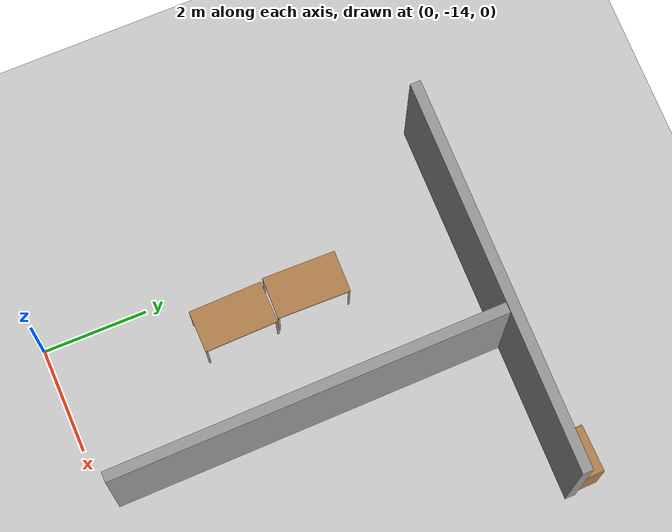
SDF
<sdf version="1.6">
 <world name="default">
  <light name="sun" type="directional">
   <pose>0 0 15 0 -0 0</pose>
   <diffuse>1 1 1 1</diffuse>
   <specular>0.1 0.1 0.1 1</specular>
   <attenuation>
    <range>1000</range>
    <constant>0.9</constant>
    <linear>0.01</linear>
    <quadratic>0.001</quadratic>
   </attenuation>
   <direction>-0.5 0.5 -1</direction>
  </light>
  <model name="ground_plane">
   <static>1</static>
   <link name="link">
    <collision name="collision">
     <geometry><plane><normal>0 0 1</normal><size>100 100</size></plane></geometry>
     <surface><friction><ode><mu>100</mu><mu2>50</mu2></ode></friction></surface>
    </collision>
    <visual name="visual">
     <transparency>1</transparency>
     <cast_shadows>0</cast_shadows>
     <geometry><plane><normal>0 0 1</normal><size>100 100</size></plane></geometry>
     <material>
      <script><uri>file://media/materials/scripts/gazebo.material</uri><name>Gazebo/Grey</name></script>
     </material>
    </visual>
   </link>
  </model>
  <gravity>0 0 -9.8</gravity>
  <magnetic_field>6e-06 2.3e-05 -4.2e-05</magnetic_field>
  <atmosphere type="adiabatic"/>
  <physics name="default_physics" default="0" type="ode">
   <max_step_size>0.001</max_step_size>
   <real_time_factor>1</real_time_factor>
   <real_time_update_rate>1000</real_time_update_rate>
  </physics>
  <scene><ambient>0.4 0.4 0.4 1</ambient><background>0.7 0.7 0.7 1</background><shadows>1</shadows></scene>
  <spherical_coordinates>
   <surface_model>EARTH_WGS84</surface_model>
   <latitude_deg>0</latitude_deg>
   <longitude_deg>0</longitude_deg>
   <elevation>0</elevation>
   <heading_deg>0</heading_deg>
  </spherical_coordinates>
  <model name="grey_wall">
   <static>1</static>
   <link name="link">
    <pose>0 0 1.4 0 -0 0</pose>
    <collision name="collision"><geometry><box><size>7.5 0.2 2.8</size></box></geometry></collision>
    <visual name="visual">
     <cast_shadows>0</cast_shadows>
     <geometry><box><size>7.5 0.2 2.8</size></box></geometry>
     <material>
      <script>
       <uri>model://grey_wall/materials/scripts</uri>
       <uri>model://grey_wall/materials/textures</uri>
       <name>vrc/grey_wall</name>
      </script>
     </material>
    </visual>
   </link>
   <pose>2.37771 -6.14515 0 0 -0 0</pose>
  </model>
  <model name="grey_wall_clone">
   <static>1</static>
   <link name="link">
    <pose>0 0 1.4 0 -0 0</pose>
    <collision name="collision"><geometry><box><size>7.5 0.2 2.8</size></box></geometry></collision>
    <visual name="visual">
     <cast_shadows>0</cast_shadows>
     <geometry><box><size>7.5 0.2 2.8</size></box></geometry>
     <material>
      <script>
       <uri>model://grey_wall/materials/scripts</uri>
       <uri>model://grey_wall/materials/textures</uri>
       <name>vrc/grey_wall</name>
      </script>
     </material>
    </visual>
   </link>
   <pose>3.0468 -10.0021 0 0 0 -1.55622</pose>
  </model>
  <model name="table">
   <static>0</static>
   <link name="link">
    <collision name="surface">
     <pose>0 0 1 0 -0 0</pose>
     <geometry><box><size>1.5 0.8 0.03</size></box></geometry>
     <surface><friction><ode><mu>0.6</mu><mu2>0.6</mu2></ode></friction></surface>
    </collision>
    <visual name="visual1">
     <pose>0 0 1 0 -0 0</pose>
     <geometry><box><size>1.4 0.8 0.04</size></box></geometry>
     <material>
      <script><uri>file://media/materials/scripts/gazebo.material</uri><name>Gazebo/Wood</name></script>
     </material>
    </visual>
    <collision name="front_left_leg">
     <pose>0.68 0.38 0.5 0 -0 0</pose>
     <geometry><cylinder><radius>0.02</radius><length>1</length></cylinder></geometry>
    </collision>
    <visual name="front_left_leg">
     <pose>0.68 0.38 0.5 0 -0 0</pose>
     <geometry><cylinder><radius>0.02</radius><length>1</length></cylinder></geometry>
     <material>
      <script><uri>file://media/materials/scripts/gazebo.material</uri><name>Gazebo/Grey</name></script>
     </material>
    </visual>
    <collision name="front_right_leg">
     <pose>0.68 -0.38 0.5 0 -0 0</pose>
     <geometry><cylinder><radius>0.02</radius><length>1</length></cylinder></geometry>
    </collision>
    <visual name="front_right_leg">
     <pose>0.68 -0.38 0.5 0 -0 0</pose>
     <geometry><cylinder><radius>0.02</radius><length>1</length></cylinder></geometry>
     <material>
      <script><uri>file://media/materials/scripts/gazebo.material</uri><name>Gazebo/Grey</name></script>
     </material>
    </visual>
    <collision name="back_right_leg">
     <pose>-0.68 -0.38 0.5 0 -0 0</pose>
     <geometry><cylinder><radius>0.02</radius><length>1</length></cylinder></geometry>
    </collision>
    <visual name="back_right_leg">
     <pose>-0.68 -0.38 0.5 0 -0 0</pose>
     <geometry><cylinder><radius>0.02</radius><length>1</length></cylinder></geometry>
     <material>
      <script><uri>file://media/materials/scripts/gazebo.material</uri><name>Gazebo/Grey</name></script>
     </material>
    </visual>
    <collision name="back_left_leg">
     <pose>-0.68 0.38 0.5 0 -0 0</pose>
     <geometry><cylinder><radius>0.02</radius><length>1</length></cylinder></geometry>
    </collision>
    <visual name="back_left_leg">
     <pose>-0.68 0.38 0.5 0 -0 0</pose>
     <geometry><cylinder><radius>0.02</radius><length>1</length></cylinder></geometry>
     <material>
      <script><uri>file://media/materials/scripts/gazebo.material</uri><name>Gazebo/Grey</name></script>
     </material>
    </visual>
    <inertial>
     <inertia><ixx>1</ixx><ixy>0</ixy><ixz>0</ixz><iyy>1</iyy><iyz>0</iyz><izz>1</izz></inertia>
     <mass>1</mass>
    </inertial>
   </link>
   <pose>0.915547 -9.16366 0.131034 0 0 -1.58697</pose>
  </model>
  <model name="table_clone">
   <static>0</static>
   <link name="link">
    <collision name="surface">
     <pose>0 0 1 0 -0 0</pose>
     <geometry><box><size>1.5 0.8 0.03</size></box></geometry>
     <surface><friction><ode><mu>0.6</mu><mu2>0.6</mu2></ode></friction></surface>
    </collision>
    <visual name="visual1">
     <pose>0 0 1 0 -0 0</pose>
     <geometry><box><size>1.4 0.8 0.04</size></box></geometry>
     <material>
      <script><uri>file://media/materials/scripts/gazebo.material</uri><name>Gazebo/Wood</name></script>
     </material>
    </visual>
    <collision name="front_left_leg">
     <pose>0.68 0.38 0.5 0 -0 0</pose>
     <geometry><cylinder><radius>0.02</radius><length>1</length></cylinder></geometry>
    </collision>
    <visual name="front_left_leg">
     <pose>0.68 0.38 0.5 0 -0 0</pose>
     <geometry><cylinder><radius>0.02</radius><length>1</length></cylinder></geometry>
     <material>
      <script><uri>file://media/materials/scripts/gazebo.material</uri><name>Gazebo/Grey</name></script>
     </material>
    </visual>
    <collision name="front_right_leg">
     <pose>0.68 -0.38 0.5 0 -0 0</pose>
     <geometry><cylinder><radius>0.02</radius><length>1</length></cylinder></geometry>
    </collision>
    <visual name="front_right_leg">
     <pose>0.68 -0.38 0.5 0 -0 0</pose>
     <geometry><cylinder><radius>0.02</radius><length>1</length></cylinder></geometry>
     <material>
      <script><uri>file://media/materials/scripts/gazebo.material</uri><name>Gazebo/Grey</name></script>
     </material>
    </visual>
    <collision name="back_right_leg">
     <pose>-0.68 -0.38 0.5 0 -0 0</pose>
     <geometry><cylinder><radius>0.02</radius><length>1</length></cylinder></geometry>
    </collision>
    <visual name="back_right_leg">
     <pose>-0.68 -0.38 0.5 0 -0 0</pose>
     <geometry><cylinder><radius>0.02</radius><length>1</length></cylinder></geometry>
     <material>
      <script><uri>file://media/materials/scripts/gazebo.material</uri><name>Gazebo/Grey</name></script>
     </material>
    </visual>
    <collision name="back_left_leg">
     <pose>-0.68 0.38 0.5 0 -0 0</pose>
     <geometry><cylinder><radius>0.02</radius><length>1</length></cylinder></geometry>
    </collision>
    <visual name="back_left_leg">
     <pose>-0.68 0.38 0.5 0 -0 0</pose>
     <geometry><cylinder><radius>0.02</radius><length>1</length></cylinder></geometry>
     <material>
      <script><uri>file://media/materials/scripts/gazebo.material</uri><name>Gazebo/Grey</name></script>
     </material>
    </visual>
    <inertial>
     <inertia><ixx>1</ixx><ixy>0</ixy><ixz>0</ixz><iyy>1</iyy><iyz>0</iyz><izz>1</izz></inertia>
     <mass>1</mass>
    </inertial>
   </link>
   <pose>0.970032 -10.5818 0.146401 2.4e-05 0.021923 -1.55452</pose>
  </model>
  <model name="bookshelf">
   <static>1</static>
   <link name="link">
    <inertial><mass>1</mass></inertial>
    <collision name="back">
     <pose>0 0.005 0.6 0 -0 0</pose>
     <geometry><box><size>0.9 0.01 1.2</size></box></geometry>
    </collision>
    <visual name="visual1">
     <pose>0 0.005 0.6 0 -0 0</pose>
     <geometry><box><size>0.9 0.01 1.2</size></box></geometry>
     <material>
      <script><uri>file://media/materials/scripts/gazebo.material</uri><name>Gazebo/Wood</name></script>
     </material>
    </visual>
    <collision name="left_side">
     <pose>0.45 -0.195 0.6 0 -0 0</pose>
     <geometry><box><size>0.02 0.4 1.2</size></box></geometry>
    </collision>
    <visual name="visual2">
     <pose>0.45 -0.195 0.6 0 -0 0</pose>
     <geometry><box><size>0.02 0.4 1.2</size></box></geometry>
     <material>
      <script><uri>file://media/materials/scripts/gazebo.material</uri><name>Gazebo/Wood</name></script>
     </material>
    </visual>
    <collision name="right_side">
     <pose>-0.45 -0.195 0.6 0 -0 0</pose>
     <geometry><box><size>0.02 0.4 1.2</size></box></geometry>
    </collision>
    <visual name="visual3">
     <pose>-0.45 -0.195 0.6 0 -0 0</pose>
     <geometry><box><size>0.02 0.4 1.2</size></box></geometry>
     <material>
      <script><uri>file://media/materials/scripts/gazebo.material</uri><name>Gazebo/Wood</name></script>
     </material>
    </visual>
    <collision name="bottom">
     <pose>0 -0.195 0.03 0 -0 0</pose>
     <geometry><box><size>0.88 0.4 0.06</size></box></geometry>
    </collision>
    <visual name="visual4">
     <pose>0 -0.195 0.03 0 -0 0</pose>
     <geometry><box><size>0.88 0.4 0.06</size></box></geometry>
     <material>
      <script><uri>file://media/materials/scripts/gazebo.material</uri><name>Gazebo/Wood</name></script>
     </material>
    </visual>
    <collision name="top">
     <pose>0 -0.195 1.19 0 -0 0</pose>
     <geometry><box><size>0.88 0.4 0.02</size></box></geometry>
    </collision>
    <visual name="visual5">
     <pose>0 -0.195 1.19 0 -0 0</pose>
     <geometry><box><size>0.88 0.4 0.02</size></box></geometry>
     <material>
      <script><uri>file://media/materials/scripts/gazebo.material</uri><name>Gazebo/Wood</name></script>
     </material>
    </visual>
    <collision name="low_shelf">
     <pose>0 -0.195 0.43 0 -0 0</pose>
     <geometry><box><size>0.88 0.4 0.02</size></box></geometry>
    </collision>
    <visual name="visual6">
     <pose>0 -0.195 0.43 0 -0 0</pose>
     <geometry><box><size>0.88 0.4 0.02</size></box></geometry>
     <material>
      <script><uri>file://media/materials/scripts/gazebo.material</uri><name>Gazebo/Wood</name></script>
     </material>
    </visual>
    <collision name="high_shelf">
     <pose>0 -0.195 0.8 0 -0 0</pose>
     <geometry><box><size>0.88 0.4 0.02</size></box></geometry>
    </collision>
    <visual name="visual7">
     <pose>0 -0.195 0.8 0 -0 0</pose>
     <geometry><box><size>0.88 0.4 0.02</size></box></geometry>
     <material>
      <script><uri>file://media/materials/scripts/gazebo.material</uri><name>Gazebo/Wood</name></script>
     </material>
    </visual>
   </link>
   <pose>5.61322 -6.00322 0 0 0 -3.10774</pose>
  </model>
 </world>
</sdf>
